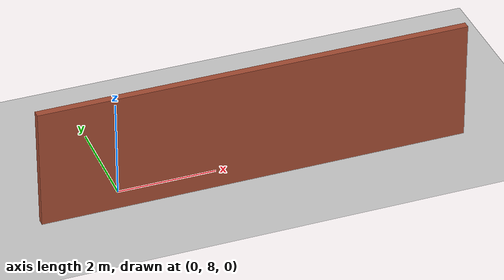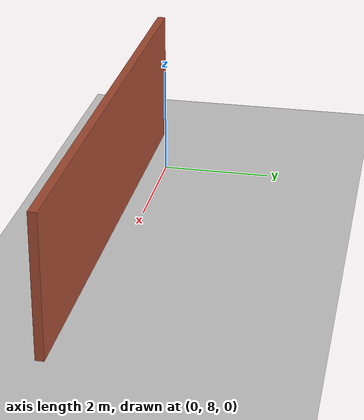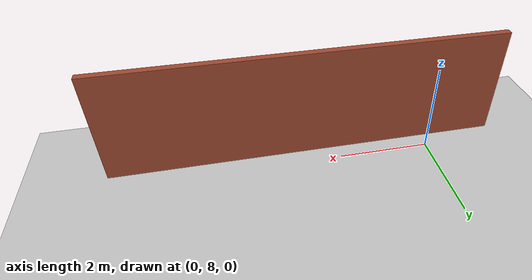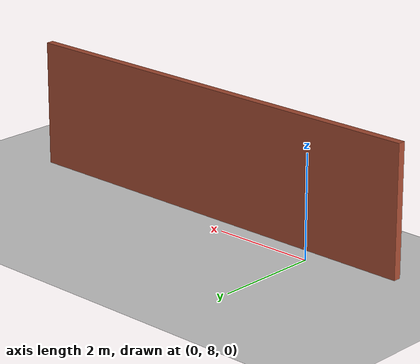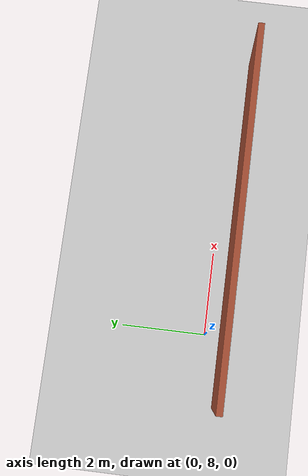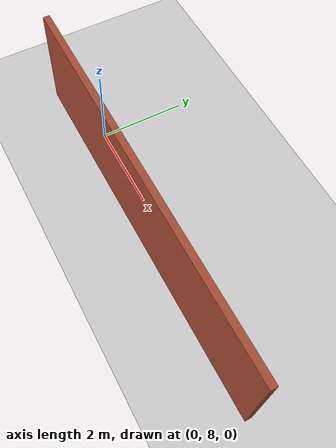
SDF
<?xml version="1.0" ?>
<sdf version="1.7">
  <world name="default">

    <!-- Ground plane -->
    <include>
      <uri>model://ground_plane</uri>
    </include>

    <!-- Sun -->
    <include>
      <uri>model://sun</uri>
    </include>

    <!-- Wall Model -->
    <model name="wall_world">
      <pose>2.67257 3.81953 0 0 -0 0</pose>
      <link name="Wall_4">
        <collision name="Wall_4_Collision">
          <geometry>
            <box>
              <size>8.75 0.15 2.5</size>
            </box>
          </geometry>
          <pose>0 0 1.25 0 -0 0</pose>
        </collision>
        <visual name="Wall_4_Visual">
          <pose>0 0 1.25 0 -0 0</pose>
          <geometry>
            <box>
              <size>8.75 0.15 2.5</size>
            </box>
          </geometry>
          <material>
            <script>
              <uri>file://media/materials/scripts/gazebo.material</uri>
              <name>Gazebo/Bricks</name>
            </script>
            <ambient>1 1 1 1</ambient>
          </material>
          <meta>
            <layer>0</layer>
          </meta>
        </visual>
        <pose>0 3.74453 0 0 -0 0</pose>
      </link>
      <static>1</static>
    </model>

  </world>
</sdf>
